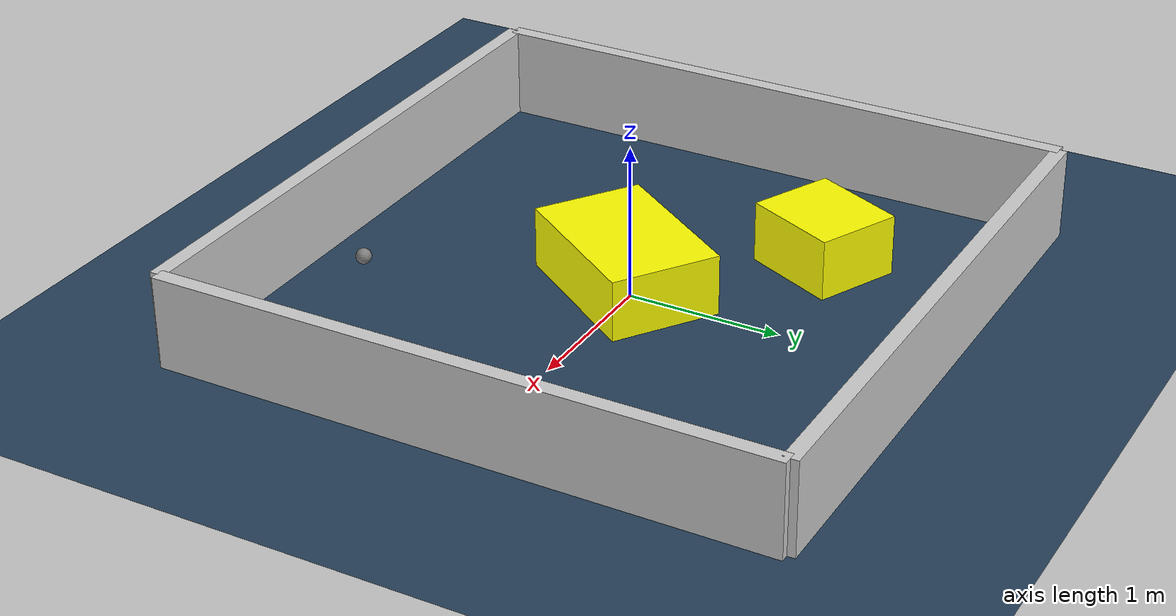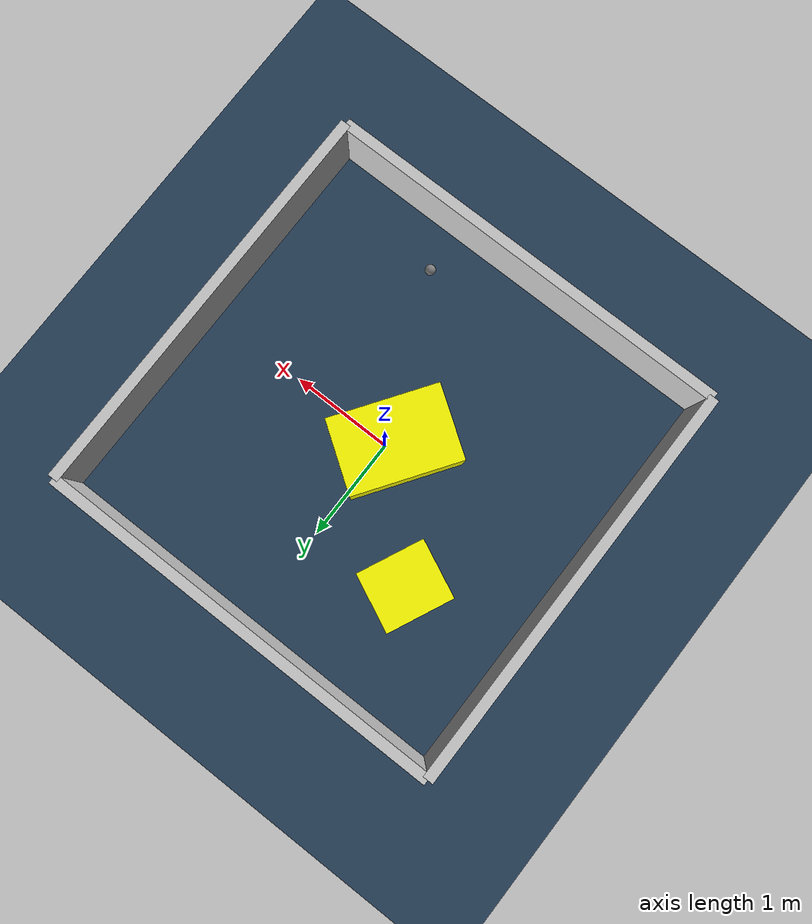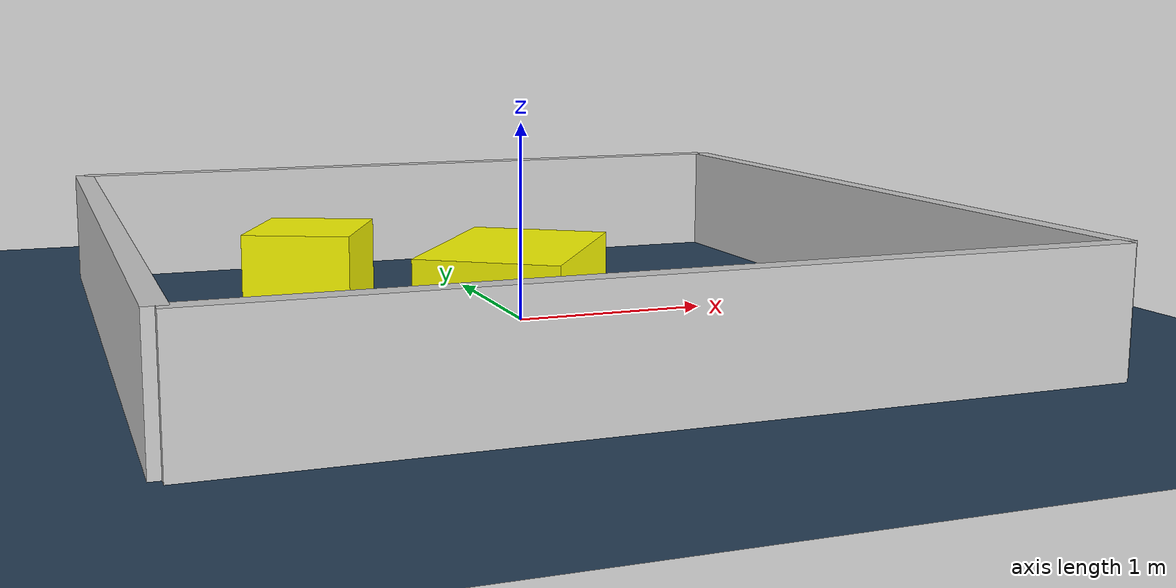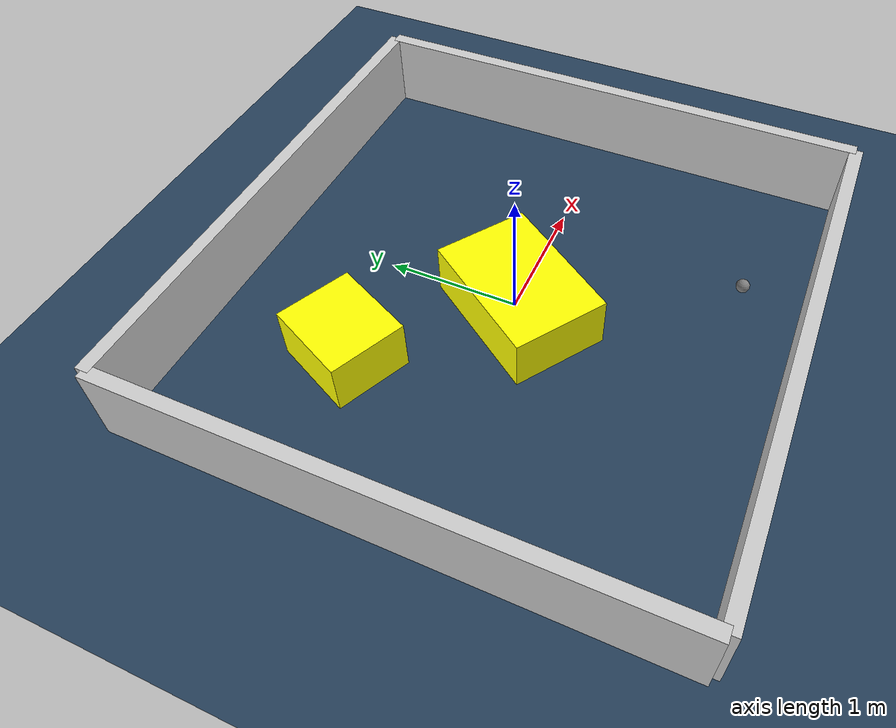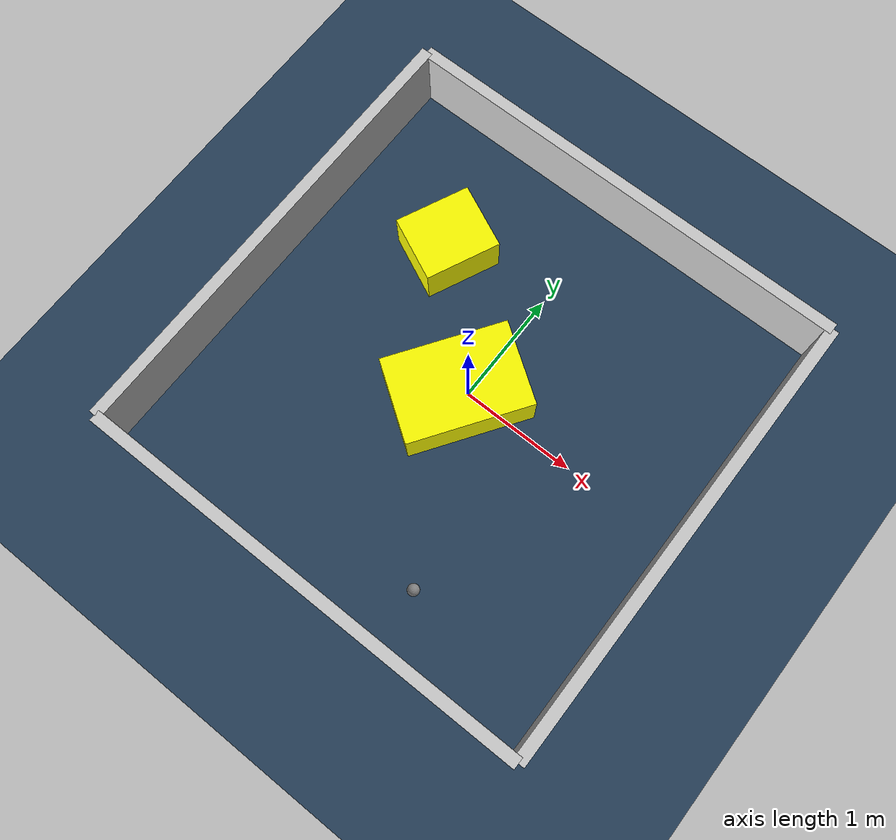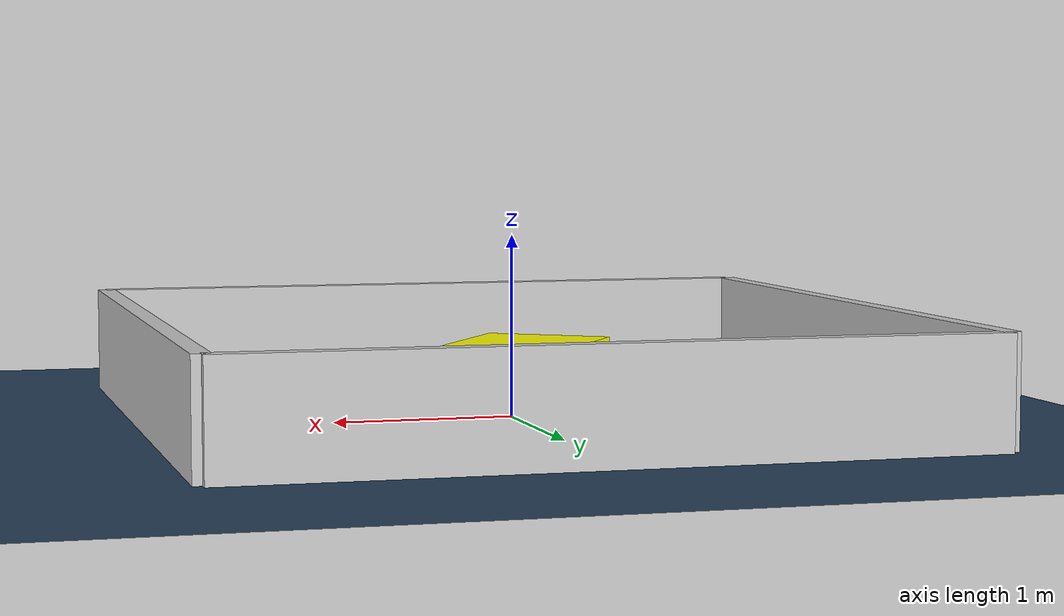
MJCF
<?xml version="1.0" ?>
<mujoco model="generated_environment">
  <option timestep="0.01" integrator="RK4" cone="elliptic"/>
  <default>
    <geom density="1"/>
  </default>
  <asset>
    <texture builtin="gradient" height="3072" rgb1="0.3 0.5 0.7" rgb2="0 0 0" type="skybox" width="512"/>
    <texture builtin="checker" height="300" mark="edge" markrgb="0.8 0.8 0.8" name="groundplane" rgb1="0.2 0.3 0.4" rgb2="0.1 0.2 0.3" type="2d" width="300"/>
    <material name="groundplane" reflectance="0.2" texrepeat="5 5" texture="groundplane" texuniform="true"/>
    <material name="robot" rgba="0.0 1.0 0.0 1"/>
  </asset>
  <worldbody>
    <light dir="0 0 -1" directional="true" pos="0 0 1.5"/>
    <geom condim="4" friction="1.0 0.005 0.001" material="groundplane" name="floor" size="0 0 0.05" type="plane"/>
    <body name="walls">
      <geom name="wall_1" condim="4" pos="-2.0 0.0 0.3" rgba="0.800000011920929 0.800000011920929 0.800000011920929 1.0" size="0.05 2.0 0.3" type="box"/>
      <geom name="wall_2" condim="4" pos="2.0 0.0 0.3" rgba="0.800000011920929 0.800000011920929 0.800000011920929 1.0" size="0.05 2.0 0.3" type="box"/>
      <geom name="wall_3" condim="4" pos="0.0 -2.0 0.3" rgba="0.800000011920929 0.800000011920929 0.800000011920929 1.0" size="2.0 0.05 0.3" type="box"/>
      <geom name="wall_4" condim="4" pos="0.0 2.0 0.3" rgba="0.800000011920929 0.800000011920929 0.800000011920929 1.0" size="2.0 0.05 0.3" type="box"/>
    </body>
    <body name="robot">
      <joint name="joint_x" type="slide" pos="0 0 0" axis="1 0 0"/>
      <joint name="joint_y" type="slide" pos="0 0 0" axis="0 1 0"/>
      <geom name="robot" type="sphere" pos="0.6569043017183374 -1.5083316582735635 0.2" size="0.05" mass="5." friction="1.0 0.005 0.0001" condim="4"/>
      <site name="sensor_ball"/>
    </body>
    <body name="obstacle_1_movable">
      <geom name="obstacle_1_movable" condim="4" pos="-0.05891277128139949 -0.06421407583030625 0.2" euler="0 0 325.6464610853922" friction="1.0 0.005 0.001" rgba="1 1 0 1" size="0.3610548496614005 0.5301051623547444 0.2" type="box" mass="0.1"/>
      <joint type="free"/>
    </body>
    <body name="obstacle_2_movable">
      <geom name="obstacle_2_movable" condim="4" pos="-0.9033976600545844 0.8809248379024477 0.2" euler="0 0 65.24244630772769" friction="1.0 0.005 0.001" rgba="1 1 0 1" size="0.32635332477802714 0.28587600340816705 0.2" type="box" mass="0.1"/>
      <joint type="free"/>
    </body>
  </worldbody>
  <actuator>
    <motor name="actuator_x" joint="joint_x" gear="1" ctrlrange="-1 1"/>
    <motor name="actuator_y" joint="joint_y" gear="1" ctrlrange="-1 1"/>
  </actuator>
</mujoco>
